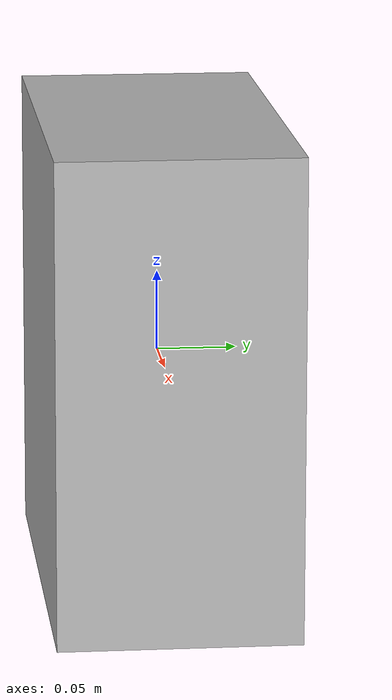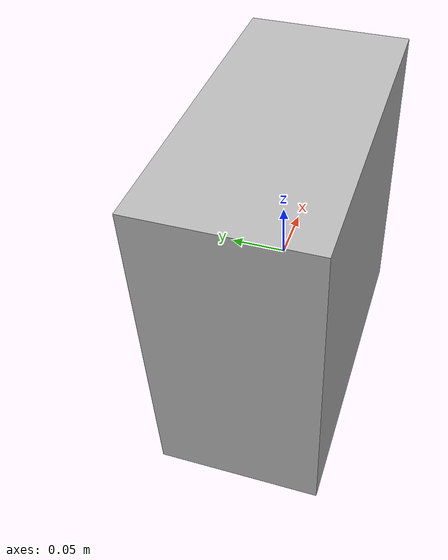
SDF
<?xml version="1.0"?>
<sdf version="1.7">
  <model name="test">
    <link name="obj_body">
      <visual name="obj_body_visual_geom">
        <geometry>
          <box>
            <size>0.3 0.15 0.3</size>
          </box>
        </geometry>
      </visual>
      <collision name="obj_body_collision_geom">
        <geometry>
          <box>
            <size>0.3 0.15 0.3</size>
          </box>
        </geometry>
      </collision>
    </link>
    <link name="wrist_body">
      <visual name="obj_body_visual_geom">
        <geometry>
          <box>
            <size>0.3 0.15 0.3</size>
          </box>
        </geometry>
      </visual>
      <collision name="obj_body_collision_geom">
        <geometry>
          <box>
            <size>0.3 0.15 0.3</size>
          </box>
        </geometry>
      </collision>
    </link>
    <joint name="extrusion_weld" type="fixed">
      <parent>table_body</parent>
      <child>extrusion_frame</child>
    </joint>
  </model>
</sdf>
